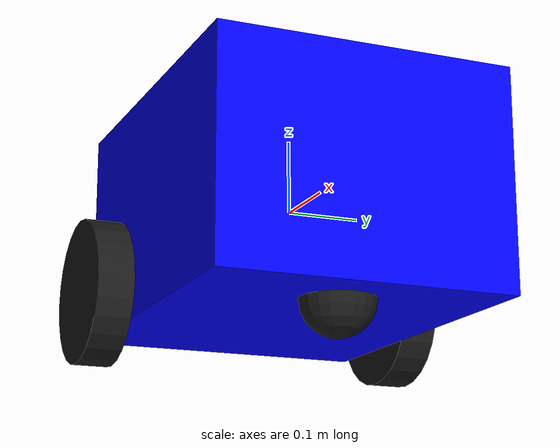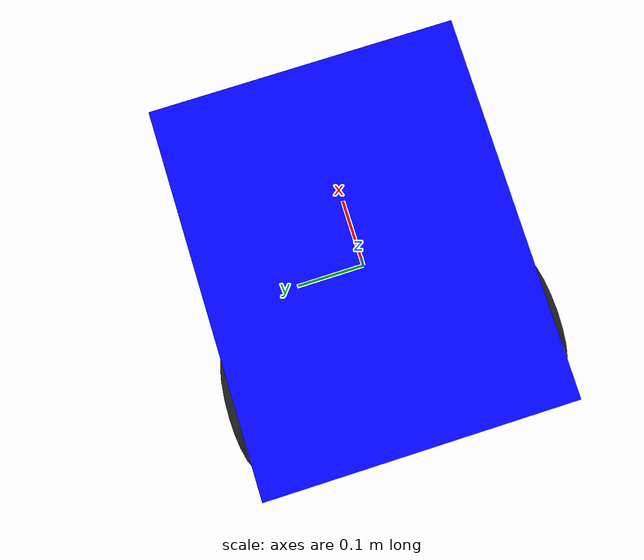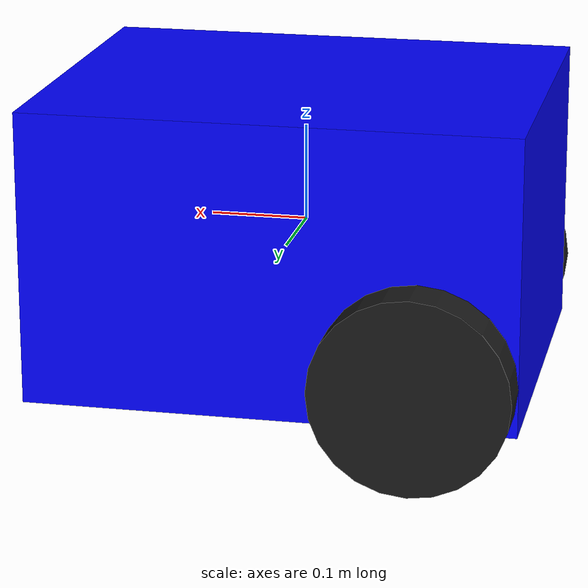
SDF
<?xml version="1.0" ?>
<sdf version="1.8">
    <model name='vehicle_blue' canonical_link='chassis'>
        <link name='chassis'>
            <inertial>
                <mass>10.14395</mass>
                <inertia>
                    <ixx>0.126164</ixx>
                    <ixy>0</ixy>
                    <ixz>0</ixz>
                    <iyy>0.416519</iyy>
                    <iyz>0</iyz>
                    <izz>0.481014</izz>
                </inertia>
            </inertial>
            <visual name='visual'>
                <geometry>
                    <box>
                        <size>0.5 0.4 0.3</size>
                    </box>
                </geometry>
                <material>
                    <ambient>0.0 0.0 1.0 1</ambient>
                    <diffuse>0.0 0.0 1.0 1</diffuse>
                    <specular>0.0 0.0 1.0 1</specular>
                </material>
            </visual>
            <collision name='collision'>
                <geometry>
                    <box>
                        <size>0.5 0.4 0.3</size>
                    </box>
                </geometry>
            </collision>
        </link>
        <link name='left_wheel'>
            <pose relative_to="chassis">-0.15 0.225 -0.1 -1.5707 0 0</pose>
            <inertial>
                <mass>2</mass>
                <inertia>
                    <ixx>0.145833</ixx>
                    <ixy>0</ixy>
                    <ixz>0</ixz>
                    <iyy>0.145833</iyy>
                    <iyz>0</iyz>
                    <izz>0.125</izz>
                </inertia>
            </inertial>
            <visual name='visual'>
                <geometry>
                    <cylinder>
                        <radius>0.1</radius>
                        <length>0.05</length>
                    </cylinder>
                </geometry>
                <material>
                    <ambient>0.1 0.1 0.1 1</ambient>
                    <diffuse>0.1 0.1 0.1 1</diffuse>
                    <specular>0.1 0.1 0.1 1</specular>
                </material>
            </visual>
            <collision name='collision'>
                <geometry>
                    <cylinder>
                        <radius>0.1</radius>
                        <length>0.05</length>
                    </cylinder>
                </geometry>
            </collision>
        </link>
        <link name='right_wheel'>
            <pose relative_to="chassis">-0.15 -0.225 -0.1 -1.5707 0 0</pose>
            <inertial>
                <mass>1</mass>
                <inertia>
                    <ixx>0.145833</ixx>
                    <ixy>0</ixy>
                    <ixz>0</ixz>
                    <iyy>0.145833</iyy>
                    <iyz>0</iyz>
                    <izz>0.125</izz>
                </inertia>
            </inertial>
            <visual name='visual'>
                <geometry>
                    <cylinder>
                        <radius>0.1</radius>
                        <length>0.05</length>
                    </cylinder>
                </geometry>
                <material>
                    <ambient>0.1 0.1 0.1 1</ambient>
                    <diffuse>0.1 0.1 0.1 1</diffuse>
                    <specular>0.1 0.1 0.1 1</specular>
                </material>
            </visual>
            <collision name='collision'>
                <geometry>
                    <cylinder>
                        <radius>0.1</radius>
                        <length>0.05</length>
                    </cylinder>
                </geometry>
            </collision>
        </link>
        <frame name="caster_frame" attached_to='chassis'>
            <pose>0.15 0 -0.15 0 0 0</pose>
        </frame>
        <link name='caster'>
            <pose relative_to='caster_frame'/>
            <inertial>
                <mass>1</mass>
                <inertia>
                    <ixx>0.1</ixx>
                    <ixy>0</ixy>
                    <ixz>0</ixz>
                    <iyy>0.1</iyy>
                    <iyz>0</iyz>
                    <izz>0.1</izz>
                </inertia>
            </inertial>
            <visual name='visual'>
                <geometry>
                    <sphere>
                        <radius>0.05</radius>
                    </sphere>
                </geometry>
                <material>
                    <ambient>0.1 0.1 0.1 1</ambient>
                    <diffuse>0.1 0.1 0.1 1</diffuse>
                    <specular>0.1 0.1 0.1 1</specular>
                </material>
            </visual>
            <collision name='collision'>
                <geometry>
                    <sphere>
                        <radius>0.05</radius>
                    </sphere>
                </geometry>
            </collision>
        </link>
        <joint name='left_wheel_joint' type='revolute'>
            <pose relative_to='left_wheel'/>
            <parent>chassis</parent>
            <child>left_wheel</child>
            <axis>
                <xyz expressed_in='__model__'>0 1 0</xyz>
                <limit>
                    <lower>-1.79769e+308</lower>
                    <upper>1.79769e+308</upper>
                </limit>
            </axis>
        </joint>
        <joint name='right_wheel_joint' type='revolute'>
            <pose relative_to='right_wheel'/>
            <parent>chassis</parent>
            <child>right_wheel</child>
            <axis>
                <xyz expressed_in='__model__'>0 1 0</xyz>
                <limit>
                    <lower>-1.79769e+308</lower>
                    <upper>1.79769e+308</upper>
                </limit>
            </axis>
        </joint>
        <joint name='caster_wheel' type='ball'>
            <parent>chassis</parent>
            <child>caster</child>
        </joint>
        <plugin
            filename="gz-sim-diff-drive-system"
            name="gz::sim::systems::DiffDrive">
            <left_joint>left_wheel_joint</left_joint>
            <right_joint>right_wheel_joint</right_joint>
            <wheel_separation>0.6</wheel_separation>
            <wheel_radius>0.2</wheel_radius>
            <odom_publish_frequency>1</odom_publish_frequency>
        </plugin>
    </model>
</sdf>
